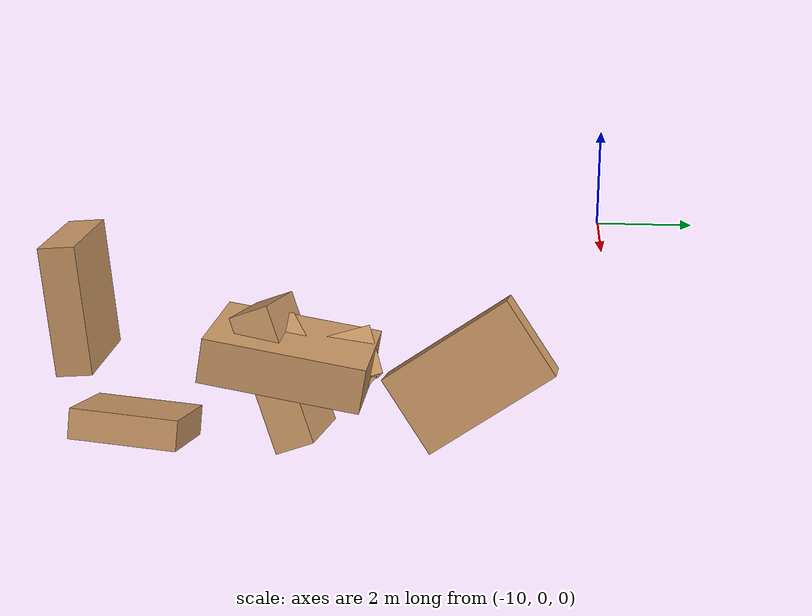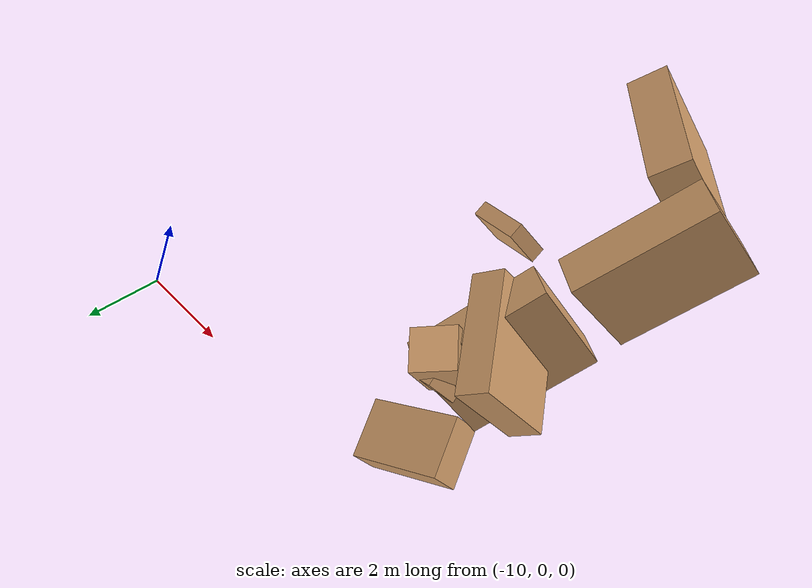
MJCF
<mujoco model="TwoArmedRower">
    <compiler angle="degree" />
    <default>
        <motor ctrlrange="-1.0 1.0" ctrllimited="true" gear="75" />
        <geom friction="1 0.5 0.5" solref=".02 1" solimp="0 .8 .01" material="self" density="50.0" />
        <joint limited="true" armature="1" damping="1" stiffness="1" solreflimit=".04 1"
            solimplimit="0 .8 .03" />
        <default class="rangefinder">
            <site type="capsule" size=".05 .5" rgba="1 0 0 .4" group="4" />
        </default>
    </default>
    <asset>
        <material name="self" rgba=".8 .6 .4 1" />
    </asset>

    <worldbody>
        <body name="seg0" pos="-3.03933716 -2.49635315 -0.7158742">

            <camera name="floating" pos="-2 0 1" xyaxes="0 -1 0 .5 0 1" mode="trackcom" fovy="90" />

            <!-- KEEP THIS -->
            <camera name="egocentric" pos=".25 0 .11" xyaxes="0 -1 0 0 0 1" fovy="90" />

            <!-- Sensors as we need -->
            <site name="rf_xp" class="rangefinder" pos="0.25 0 0.11" zaxis="1 0 0" />
            <site name="rf_xn" class="rangefinder" pos="-0.25 0 0.11" zaxis="-1 0 0" />
            <site name="rf_yp" class="rangefinder" pos="0 0.25 0.11" zaxis="0 1 0" />
            <site name="rf_yn" class="rangefinder" pos="0 -0.25 0.11" zaxis="0 -1 0" />
            <site name="rf_xpyp" class="rangefinder" pos="0.25 0.25 0.11" zaxis="1 1 0" />
            <site name="rf_xpyn" class="rangefinder" pos="0.25 -0.25 0.11" zaxis="1 -1 0" />
            <site name="rf_xnyn" class="rangefinder" pos="-0.25 -0.25 0.11" zaxis="-1 -1 0" />
            <site name="rf_xnyp" class="rangefinder" pos="-0.25 0.25 0.11" zaxis="-1 1 0" />

            <!-- sites that visualize the x-y axis of the ant body, good for debugging -->
            <site name="x_pos" type="capsule" pos="0.5 0 0" size=".05 .5" zaxis="1 0 0"
                rgba="1 0 0 1" group="5" />
            <site name="x_neg" type="capsule" pos="-0.5 0 0" size=".05 .5" zaxis="-1 0 0"
                rgba="0 0 1 1" group="5" />
            <site name="y_pos" type="capsule" pos="0 0.5 0" size=".05 .5" zaxis="0 1 0"
                rgba="1 1 1 1" group="5" />
            <site name="y_neg" type="capsule" pos="0 -0.5 0" size=".05 .5" zaxis="0 -1 0"
                rgba="0 0 0 1" group="5" />
            <site name="port_site" pos=".5 0 0" size="0.5" rgba="1 0 0 1" group="5" />
            <site name="starboard_site" pos="-.5 0 0" size="0.5" rgba="0 1 0 1" group="5" />

            <geom name="seg0_geom" type="box" pos="0 0 0" size="0.7817855 1.3171674 0.436341643" euler="19.852272 256.7119 164.862534" />
            <site name="seg0_site" type="box" pos="0 0 0" size="0.01 0.01 0.1" zaxis="0 0 0" />

            <body name="seg1" pos="-2.65487671 -3.817871 -0.6076586">
                <joint name="seg0_to_1" range="-75 75" type="" axis="" pos=" "/>
                <geom name="seg1_geom" type="box" pos="0 0 0" size="0.595344 0.419512331 0.388579845" euler="351.413818 186.149872 156.671753" />
                <site name="seg1_site" type="box" pos="0 0 0" size="0.01 0.01 0.1" zaxis="0 0 0" />
            </body>

            <body name="seg2" pos="-2.87554932 -2.51483154 -1.10721791">
                <joint name="seg0_to_2" range="-75 75" type="" axis="" pos=" "/>
                <geom name="seg2_geom" type="box" pos="0 0 0" size="0.165260255 0.5905807 0.482132822" euler="20.4026775 257.081238 240.1416" />
                <site name="seg2_site" type="box" pos="0 0 0" size="0.01 0.01 0.1" zaxis="0 0 0" />

                <body name="seg3" pos="-3.13427734 -2.79385376 -0.6540449">
                    <joint name="seg2_to_3" range="-75 75" type="" axis="" pos=" "/>
                    <geom name="seg3_geom" type="box" pos="0 0 0" size="0.145482287 0.5199013 0.424432218" euler="17.5526886 258.3423 318.075745" />
                    <site name="seg3_site" type="box" pos="0 0 0" size="0.01 0.01 0.1" zaxis="0 0 0" />
                </body>
            </body>

            <body name="seg4" pos="-2.68029785 -3.72415161 -1.15989685">
                <joint name="seg0_to_4" range="-75 75" type="" axis="" pos=" "/>
                <geom name="seg4_geom" type="box" pos="0 0 0" size="0.386039972 1.37956786 1.126239" euler="20.4677544 257.067383 90.0739441" />
                <site name="seg4_site" type="box" pos="0 0 0" size="0.01 0.01 0.1" zaxis="0 0 0" />

                <body name="seg5" pos="-2.92819214 -3.77680969 -2.56077242">
                    <joint name="seg4_to_5" range="-75 75" type="" axis="" pos=" "/>
                    <geom name="seg5_geom" type="box" pos="0 0 0" size="0.339839548 1.21446419 0.9914531" euler="17.8545475 255.745743 21.2874279" />
                    <site name="seg5_site" type="box" pos="0 0 0" size="0.01 0.01 0.1" zaxis="0 0 0" />
                </body>
            </body>

            <body name="seg6" pos="-2.361084 -3.52288818 -0.71639967">
                <joint name="seg0_to_6" range="-75 75" type="" axis="" pos=" "/>
                <geom name="seg6_geom" type="box" pos="0 0 0" size="0.4374656 1.5633446 1.27626884" euler="23.47614 265.4939 212.517929" />
                <site name="seg6_site" type="box" pos="0 0 0" size="0.01 0.01 0.1" zaxis="0 0 0" />

                <body name="seg7" pos="-2.53570557 -4.837387 0.169285059">
                    <joint name="seg6_to_7" range="-75 75" type="" axis="" pos=" "/>
                    <geom name="seg7_geom" type="box" pos="0 0 0" size="0.385110676 1.37624693 1.12352777" euler="23.2930145 267.197662 288.213745" />
                    <site name="seg7_site" type="box" pos="0 0 0" size="0.01 0.01 0.1" zaxis="0 0 0" />
                </body>
            </body>

            <body name="seg8" pos="-3.186676 -2.498703 -1.07571065">
                <joint name="seg0_to_8" range="-75 75" type="" axis="" pos=" "/>
                <geom name="seg8_geom" type="box" pos="0 0 0" size="0.7438524 0.524159551 0.485510945" euler="19.0098019 336.870422 195.831238" />
                <site name="seg8_site" type="box" pos="0 0 0" size="0.01 0.01 0.1" zaxis="0 0 0" />
            </body>
        </body>
    </worldbody>

    <actuator>
        <!-- Motors for all joints -->
        <motor name="motor_to_0" joint="seg_to_0" />
        <motor name="motor_to_0" joint="seg_to_0" />
        <motor name="motor_to_0" joint="seg_to_0" />
        <motor name="motor_to_0" joint="seg_to_0" />
        <motor name="motor_to_0" joint="seg_to_0" />
        <motor name="motor_to_0" joint="seg_to_0" />
        <motor name="motor_to_0" joint="seg_to_0" />
        <motor name="motor_to_0" joint="seg_to_0" />
    </actuator>

    <sensor>
        <!-- Sensors for touch and other info -->
        <touch name="seg0_touch" site="seg0_site" />
        <touch name="seg1_touch" site="seg1_site" />
        <touch name="seg2_touch" site="seg2_site" />
        <touch name="seg3_touch" site="seg3_site" />
        <touch name="seg4_touch" site="seg4_site" />
        <touch name="seg5_touch" site="seg5_site" />
        <touch name="seg6_touch" site="seg6_site" />
        <touch name="seg7_touch" site="seg7_site" />
        <touch name="seg8_touch" site="seg8_site" />
        <velocimeter name="torso_vel" site="seg0_site" />
        <gyro name="torso_gyro" site="seg0_site" />
        <accelerometer name="torso_accel" site="seg0_site" />
    </sensor>

    <contact>
        <!-- Contact Exclusions (should be everything) -->
        <exclude body1="seg0" body2="seg1" />
        <exclude body1="seg0" body2="seg2" />
        <exclude body1="seg0" body2="seg3" />
        <exclude body1="seg0" body2="seg4" />
        <exclude body1="seg0" body2="seg5" />
        <exclude body1="seg0" body2="seg6" />
        <exclude body1="seg0" body2="seg7" />
        <exclude body1="seg0" body2="seg8" />
        <exclude body1="seg1" body2="seg2" />
        <exclude body1="seg1" body2="seg3" />
        <exclude body1="seg1" body2="seg4" />
        <exclude body1="seg1" body2="seg5" />
        <exclude body1="seg1" body2="seg6" />
        <exclude body1="seg1" body2="seg7" />
        <exclude body1="seg1" body2="seg8" />
        <exclude body1="seg2" body2="seg3" />
        <exclude body1="seg2" body2="seg4" />
        <exclude body1="seg2" body2="seg5" />
        <exclude body1="seg2" body2="seg6" />
        <exclude body1="seg2" body2="seg7" />
        <exclude body1="seg2" body2="seg8" />
        <exclude body1="seg3" body2="seg4" />
        <exclude body1="seg3" body2="seg5" />
        <exclude body1="seg3" body2="seg6" />
        <exclude body1="seg3" body2="seg7" />
        <exclude body1="seg3" body2="seg8" />
        <exclude body1="seg4" body2="seg5" />
        <exclude body1="seg4" body2="seg6" />
        <exclude body1="seg4" body2="seg7" />
        <exclude body1="seg4" body2="seg8" />
        <exclude body1="seg5" body2="seg6" />
        <exclude body1="seg5" body2="seg7" />
        <exclude body1="seg5" body2="seg8" />
        <exclude body1="seg6" body2="seg7" />
        <exclude body1="seg6" body2="seg8" />
        <exclude body1="seg7" body2="seg8" />
    </contact>
</mujoco>
